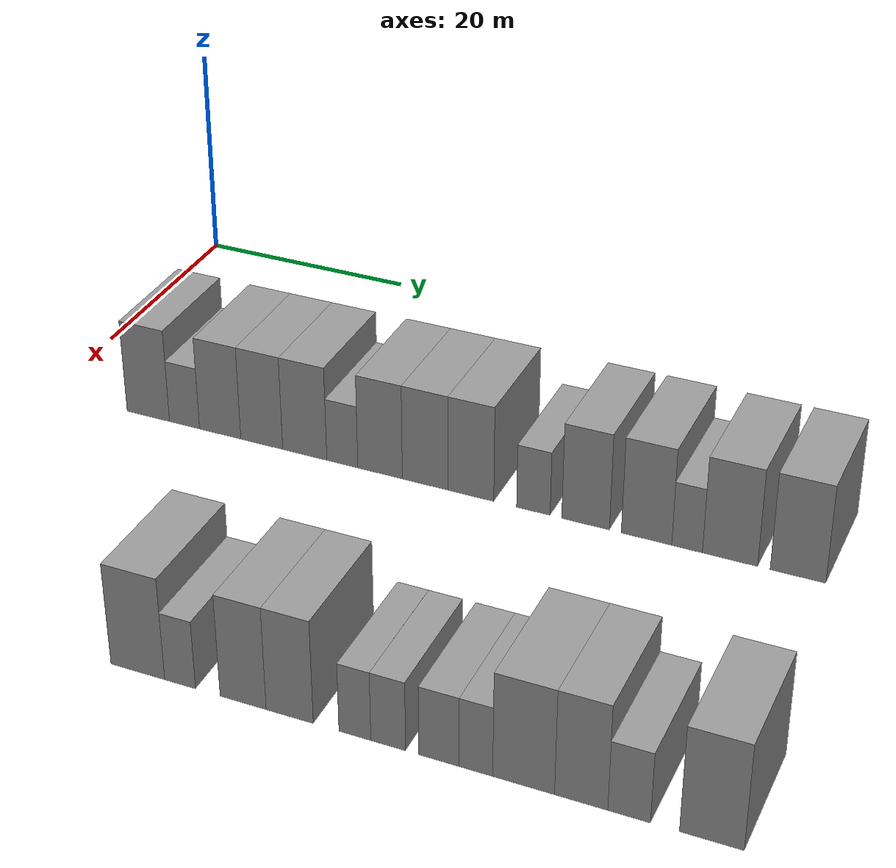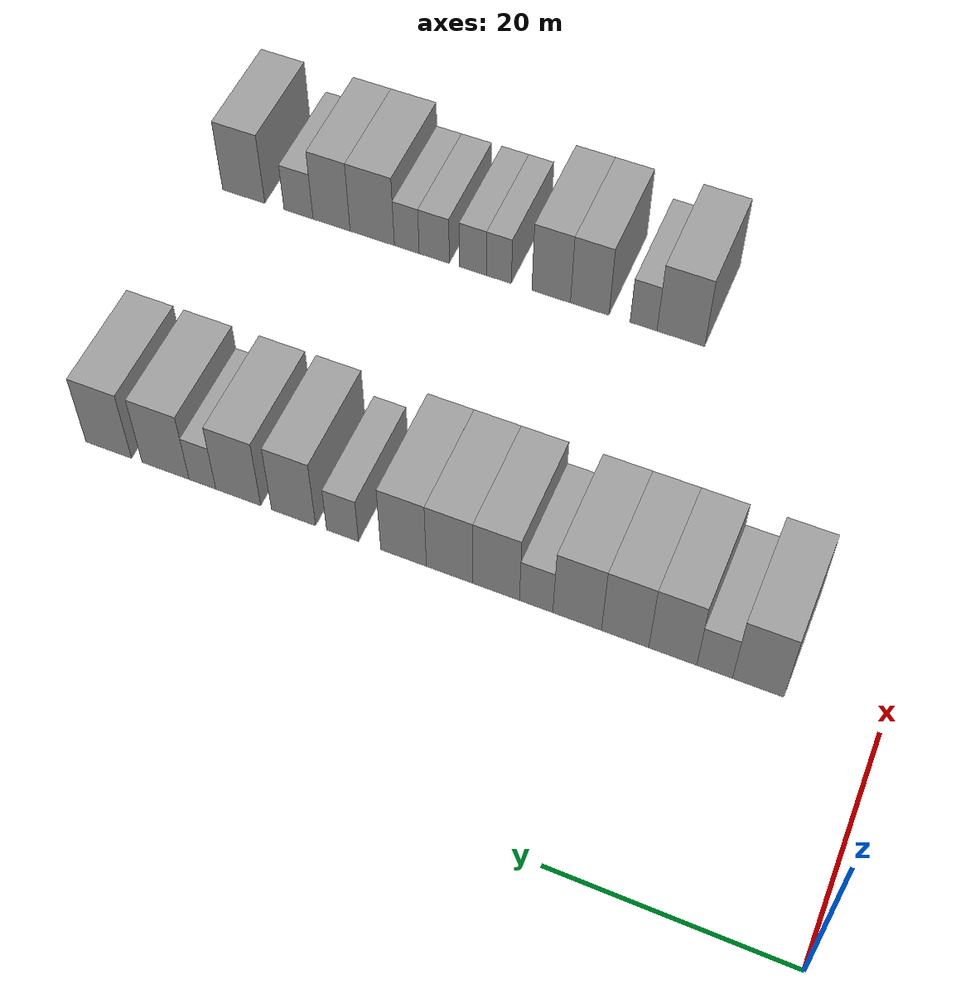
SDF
<sdf version="1.6">
 <world name="default">
  <model name="building_52">
   <static>1</static>
   <pose>25.0000 9.8063 0 0.000000 0.000000 0.000000</pose>
   <link name="link">
    <pose>0 0 4.50 0 0 0</pose>
    <collision name="collision"><geometry><box><size>10.0000 4.1936 9.0000</size></box></geometry></collision>
    <visual name="visual">
     <cast_shadows>0</cast_shadows>
     <geometry><box><size>10.0000 4.1936 9.0000</size></box></geometry>
     <material>
      <script>
       <uri>model://grey_wall/materials/scripts</uri>
       <uri>model://grey_wall/materials/textures</uri>
       <name>vrc/grey_wall</name>
      </script>
     </material>
    </visual>
   </link>
  </model>
  <model name="building_53">
   <static>1</static>
   <pose>25.0000 13.3732 0 0.000000 0.000000 0.000000</pose>
   <link name="link">
    <pose>0 0 3.00 0 0 0</pose>
    <collision name="collision"><geometry><box><size>10.0000 2.9401 6.0000</size></box></geometry></collision>
    <visual name="visual">
     <cast_shadows>0</cast_shadows>
     <geometry><box><size>10.0000 2.9401 6.0000</size></box></geometry>
     <material>
      <script>
       <uri>model://grey_wall/materials/scripts</uri>
       <uri>model://grey_wall/materials/textures</uri>
       <name>vrc/grey_wall</name>
      </script>
     </material>
    </visual>
   </link>
  </model>
  <model name="building_54">
   <static>1</static>
   <pose>25.0000 16.8367 0 0.000000 0.000000 0.000000</pose>
   <link name="link">
    <pose>0 0 4.50 0 0 0</pose>
    <collision name="collision"><geometry><box><size>10.0000 3.9869 9.0000</size></box></geometry></collision>
    <visual name="visual">
     <cast_shadows>0</cast_shadows>
     <geometry><box><size>10.0000 3.9869 9.0000</size></box></geometry>
     <material>
      <script>
       <uri>model://grey_wall/materials/scripts</uri>
       <uri>model://grey_wall/materials/textures</uri>
       <name>vrc/grey_wall</name>
      </script>
     </material>
    </visual>
   </link>
  </model>
  <model name="building_55">
   <static>1</static>
   <pose>25.0000 20.8237 0 0.000000 0.000000 0.000000</pose>
   <link name="link">
    <pose>0 0 4.50 0 0 0</pose>
    <collision name="collision"><geometry><box><size>10.0000 3.9871 9.0000</size></box></geometry></collision>
    <visual name="visual">
     <cast_shadows>0</cast_shadows>
     <geometry><box><size>10.0000 3.9871 9.0000</size></box></geometry>
     <material>
      <script>
       <uri>model://grey_wall/materials/scripts</uri>
       <uri>model://grey_wall/materials/textures</uri>
       <name>vrc/grey_wall</name>
      </script>
     </material>
    </visual>
   </link>
  </model>
  <model name="building_56">
   <static>1</static>
   <pose>25.0000 24.8852 0 0.000000 0.000000 0.000000</pose>
   <link name="link">
    <pose>0 0 4.50 0 0 0</pose>
    <collision name="collision"><geometry><box><size>10.0000 4.1360 9.0000</size></box></geometry></collision>
    <visual name="visual">
     <cast_shadows>0</cast_shadows>
     <geometry><box><size>10.0000 4.1360 9.0000</size></box></geometry>
     <material>
      <script>
       <uri>model://grey_wall/materials/scripts</uri>
       <uri>model://grey_wall/materials/textures</uri>
       <name>vrc/grey_wall</name>
      </script>
     </material>
    </visual>
   </link>
  </model>
  <model name="building_57">
   <static>1</static>
   <pose>25.0000 28.3893 0 0.000000 0.000000 0.000000</pose>
   <link name="link">
    <pose>0 0 3.00 0 0 0</pose>
    <collision name="collision"><geometry><box><size>10.0000 2.8722 6.0000</size></box></geometry></collision>
    <visual name="visual">
     <cast_shadows>0</cast_shadows>
     <geometry><box><size>10.0000 2.8722 6.0000</size></box></geometry>
     <material>
      <script>
       <uri>model://grey_wall/materials/scripts</uri>
       <uri>model://grey_wall/materials/textures</uri>
       <name>vrc/grey_wall</name>
      </script>
     </material>
    </visual>
   </link>
  </model>
  <model name="building_58">
   <static>1</static>
   <pose>25.0000 31.8541 0 0.000000 0.000000 0.000000</pose>
   <link name="link">
    <pose>0 0 4.50 0 0 0</pose>
    <collision name="collision"><geometry><box><size>10.0000 4.0575 9.0000</size></box></geometry></collision>
    <visual name="visual">
     <cast_shadows>0</cast_shadows>
     <geometry><box><size>10.0000 4.0575 9.0000</size></box></geometry>
     <material>
      <script>
       <uri>model://grey_wall/materials/scripts</uri>
       <uri>model://grey_wall/materials/textures</uri>
       <name>vrc/grey_wall</name>
      </script>
     </material>
    </visual>
   </link>
  </model>
  <model name="building_59">
   <static>1</static>
   <pose>25.0000 35.9184 0 0.000000 0.000000 0.000000</pose>
   <link name="link">
    <pose>0 0 4.50 0 0 0</pose>
    <collision name="collision"><geometry><box><size>10.0000 4.0711 9.0000</size></box></geometry></collision>
    <visual name="visual">
     <cast_shadows>0</cast_shadows>
     <geometry><box><size>10.0000 4.0711 9.0000</size></box></geometry>
     <material>
      <script>
       <uri>model://grey_wall/materials/scripts</uri>
       <uri>model://grey_wall/materials/textures</uri>
       <name>vrc/grey_wall</name>
      </script>
     </material>
    </visual>
   </link>
  </model>
  <model name="building_60">
   <static>1</static>
   <pose>25.0000 39.9813 0 0.000000 0.000000 0.000000</pose>
   <link name="link">
    <pose>0 0 4.50 0 0 0</pose>
    <collision name="collision"><geometry><box><size>10.0000 4.0546 9.0000</size></box></geometry></collision>
    <visual name="visual">
     <cast_shadows>0</cast_shadows>
     <geometry><box><size>10.0000 4.0546 9.0000</size></box></geometry>
     <material>
      <script>
       <uri>model://grey_wall/materials/scripts</uri>
       <uri>model://grey_wall/materials/textures</uri>
       <name>vrc/grey_wall</name>
      </script>
     </material>
    </visual>
   </link>
  </model>
  <model name="building_61">
   <static>1</static>
   <pose>25.0000 45.4525 0 0.000000 0.000000 0.000000</pose>
   <link name="link">
    <pose>0 0 3.00 0 0 0</pose>
    <collision name="collision"><geometry><box><size>10.0000 2.8880 6.0000</size></box></geometry></collision>
    <visual name="visual">
     <cast_shadows>0</cast_shadows>
     <geometry><box><size>10.0000 2.8880 6.0000</size></box></geometry>
     <material>
      <script>
       <uri>model://grey_wall/materials/scripts</uri>
       <uri>model://grey_wall/materials/textures</uri>
       <name>vrc/grey_wall</name>
      </script>
     </material>
    </visual>
   </link>
  </model>
  <model name="building_62">
   <static>1</static>
   <pose>25.0000 49.9165 0 0.000000 0.000000 0.000000</pose>
   <link name="link">
    <pose>0 0 4.50 0 0 0</pose>
    <collision name="collision"><geometry><box><size>10.0000 4.0400 9.0000</size></box></geometry></collision>
    <visual name="visual">
     <cast_shadows>0</cast_shadows>
     <geometry><box><size>10.0000 4.0400 9.0000</size></box></geometry>
     <material>
      <script>
       <uri>model://grey_wall/materials/scripts</uri>
       <uri>model://grey_wall/materials/textures</uri>
       <name>vrc/grey_wall</name>
      </script>
     </material>
    </visual>
   </link>
  </model>
  <model name="building_63">
   <static>1</static>
   <pose>25.0000 55.0288 0 0.000000 0.000000 0.000000</pose>
   <link name="link">
    <pose>0 0 4.50 0 0 0</pose>
    <collision name="collision"><geometry><box><size>10.0000 4.1845 9.0000</size></box></geometry></collision>
    <visual name="visual">
     <cast_shadows>0</cast_shadows>
     <geometry><box><size>10.0000 4.1845 9.0000</size></box></geometry>
     <material>
      <script>
       <uri>model://grey_wall/materials/scripts</uri>
       <uri>model://grey_wall/materials/textures</uri>
       <name>vrc/grey_wall</name>
      </script>
     </material>
    </visual>
   </link>
  </model>
  <model name="building_64">
   <static>1</static>
   <pose>25.0000 58.3787 0 0.000000 0.000000 0.000000</pose>
   <link name="link">
    <pose>0 0 3.00 0 0 0</pose>
    <collision name="collision"><geometry><box><size>10.0000 2.5154 6.0000</size></box></geometry></collision>
    <visual name="visual">
     <cast_shadows>0</cast_shadows>
     <geometry><box><size>10.0000 2.5154 6.0000</size></box></geometry>
     <material>
      <script>
       <uri>model://grey_wall/materials/scripts</uri>
       <uri>model://grey_wall/materials/textures</uri>
       <name>vrc/grey_wall</name>
      </script>
     </material>
    </visual>
   </link>
  </model>
  <model name="building_65">
   <static>1</static>
   <pose>25.0000 61.8660 0 0.000000 0.000000 0.000000</pose>
   <link name="link">
    <pose>0 0 4.50 0 0 0</pose>
    <collision name="collision"><geometry><box><size>10.0000 4.4591 9.0000</size></box></geometry></collision>
    <visual name="visual">
     <cast_shadows>0</cast_shadows>
     <geometry><box><size>10.0000 4.4591 9.0000</size></box></geometry>
     <material>
      <script>
       <uri>model://grey_wall/materials/scripts</uri>
       <uri>model://grey_wall/materials/textures</uri>
       <name>vrc/grey_wall</name>
      </script>
     </material>
    </visual>
   </link>
  </model>
  <model name="building_66">
   <static>1</static>
   <pose>25.0000 67.2920 0 0.000000 0.000000 0.000000</pose>
   <link name="link">
    <pose>0 0 4.50 0 0 0</pose>
    <collision name="collision"><geometry><box><size>10.0000 4.3930 9.0000</size></box></geometry></collision>
    <visual name="visual">
     <cast_shadows>0</cast_shadows>
     <geometry><box><size>10.0000 4.3930 9.0000</size></box></geometry>
     <material>
      <script>
       <uri>model://grey_wall/materials/scripts</uri>
       <uri>model://grey_wall/materials/textures</uri>
       <name>vrc/grey_wall</name>
      </script>
     </material>
    </visual>
   </link>
  </model>
  <model name="building_165">
   <static>1</static>
   <pose>55.0000 26.5648 0 0.000000 0.000000 0.000000</pose>
   <link name="link">
    <pose>0 0 4.50 0 0 0</pose>
    <collision name="collision"><geometry><box><size>10.0000 4.4670 9.0000</size></box></geometry></collision>
    <visual name="visual">
     <cast_shadows>0</cast_shadows>
     <geometry><box><size>10.0000 4.4670 9.0000</size></box></geometry>
     <material>
      <script>
       <uri>model://grey_wall/materials/scripts</uri>
       <uri>model://grey_wall/materials/textures</uri>
       <name>vrc/grey_wall</name>
      </script>
     </material>
    </visual>
   </link>
  </model>
  <model name="building_166">
   <static>1</static>
   <pose>55.0000 30.0605 0 0.000000 0.000000 0.000000</pose>
   <link name="link">
    <pose>0 0 3.00 0 0 0</pose>
    <collision name="collision"><geometry><box><size>10.0000 2.5244 6.0000</size></box></geometry></collision>
    <visual name="visual">
     <cast_shadows>0</cast_shadows>
     <geometry><box><size>10.0000 2.5244 6.0000</size></box></geometry>
     <material>
      <script>
       <uri>model://grey_wall/materials/scripts</uri>
       <uri>model://grey_wall/materials/textures</uri>
       <name>vrc/grey_wall</name>
      </script>
     </material>
    </visual>
   </link>
  </model>
  <model name="building_167">
   <static>1</static>
   <pose>55.0000 35.1649 0 0.000000 0.000000 0.000000</pose>
   <link name="link">
    <pose>0 0 4.50 0 0 0</pose>
    <collision name="collision"><geometry><box><size>10.0000 3.6843 9.0000</size></box></geometry></collision>
    <visual name="visual">
     <cast_shadows>0</cast_shadows>
     <geometry><box><size>10.0000 3.6843 9.0000</size></box></geometry>
     <material>
      <script>
       <uri>model://grey_wall/materials/scripts</uri>
       <uri>model://grey_wall/materials/textures</uri>
       <name>vrc/grey_wall</name>
      </script>
     </material>
    </visual>
   </link>
  </model>
  <model name="building_168">
   <static>1</static>
   <pose>55.0000 38.8623 0 0.000000 0.000000 0.000000</pose>
   <link name="link">
    <pose>0 0 4.50 0 0 0</pose>
    <collision name="collision"><geometry><box><size>10.0000 3.7105 9.0000</size></box></geometry></collision>
    <visual name="visual">
     <cast_shadows>0</cast_shadows>
     <geometry><box><size>10.0000 3.7105 9.0000</size></box></geometry>
     <material>
      <script>
       <uri>model://grey_wall/materials/scripts</uri>
       <uri>model://grey_wall/materials/textures</uri>
       <name>vrc/grey_wall</name>
      </script>
     </material>
    </visual>
   </link>
  </model>
  <model name="building_169">
   <static>1</static>
   <pose>55.0000 43.9409 0 0.000000 0.000000 0.000000</pose>
   <link name="link">
    <pose>0 0 3.00 0 0 0</pose>
    <collision name="collision"><geometry><box><size>10.0000 2.4468 6.0000</size></box></geometry></collision>
    <visual name="visual">
     <cast_shadows>0</cast_shadows>
     <geometry><box><size>10.0000 2.4468 6.0000</size></box></geometry>
     <material>
      <script>
       <uri>model://grey_wall/materials/scripts</uri>
       <uri>model://grey_wall/materials/textures</uri>
       <name>vrc/grey_wall</name>
      </script>
     </material>
    </visual>
   </link>
  </model>
  <model name="building_170">
   <static>1</static>
   <pose>55.0000 46.4843 0 0.000000 0.000000 0.000000</pose>
   <link name="link">
    <pose>0 0 3.00 0 0 0</pose>
    <collision name="collision"><geometry><box><size>10.0000 2.6398 6.0000</size></box></geometry></collision>
    <visual name="visual">
     <cast_shadows>0</cast_shadows>
     <geometry><box><size>10.0000 2.6398 6.0000</size></box></geometry>
     <material>
      <script>
       <uri>model://grey_wall/materials/scripts</uri>
       <uri>model://grey_wall/materials/textures</uri>
       <name>vrc/grey_wall</name>
      </script>
     </material>
    </visual>
   </link>
  </model>
  <model name="building_171">
   <static>1</static>
   <pose>55.0000 50.3026 0 0.000000 0.000000 0.000000</pose>
   <link name="link">
    <pose>0 0 3.00 0 0 0</pose>
    <collision name="collision"><geometry><box><size>10.0000 2.9969 6.0000</size></box></geometry></collision>
    <visual name="visual">
     <cast_shadows>0</cast_shadows>
     <geometry><box><size>10.0000 2.9969 6.0000</size></box></geometry>
     <material>
      <script>
       <uri>model://grey_wall/materials/scripts</uri>
       <uri>model://grey_wall/materials/textures</uri>
       <name>vrc/grey_wall</name>
      </script>
     </material>
    </visual>
   </link>
  </model>
  <model name="building_172">
   <static>1</static>
   <pose>55.0000 53.0404 0 0.000000 0.000000 0.000000</pose>
   <link name="link">
    <pose>0 0 3.00 0 0 0</pose>
    <collision name="collision"><geometry><box><size>10.0000 2.4786 6.0000</size></box></geometry></collision>
    <visual name="visual">
     <cast_shadows>0</cast_shadows>
     <geometry><box><size>10.0000 2.4786 6.0000</size></box></geometry>
     <material>
      <script>
       <uri>model://grey_wall/materials/scripts</uri>
       <uri>model://grey_wall/materials/textures</uri>
       <name>vrc/grey_wall</name>
      </script>
     </material>
    </visual>
   </link>
  </model>
  <model name="building_173">
   <static>1</static>
   <pose>55.0000 56.5176 0 0.000000 0.000000 0.000000</pose>
   <link name="link">
    <pose>0 0 4.50 0 0 0</pose>
    <collision name="collision"><geometry><box><size>10.0000 4.4757 9.0000</size></box></geometry></collision>
    <visual name="visual">
     <cast_shadows>0</cast_shadows>
     <geometry><box><size>10.0000 4.4757 9.0000</size></box></geometry>
     <material>
      <script>
       <uri>model://grey_wall/materials/scripts</uri>
       <uri>model://grey_wall/materials/textures</uri>
       <name>vrc/grey_wall</name>
      </script>
     </material>
    </visual>
   </link>
  </model>
  <model name="building_174">
   <static>1</static>
   <pose>55.0000 60.6454 0 0.000000 0.000000 0.000000</pose>
   <link name="link">
    <pose>0 0 4.50 0 0 0</pose>
    <collision name="collision"><geometry><box><size>10.0000 3.7800 9.0000</size></box></geometry></collision>
    <visual name="visual">
     <cast_shadows>0</cast_shadows>
     <geometry><box><size>10.0000 3.7800 9.0000</size></box></geometry>
     <material>
      <script>
       <uri>model://grey_wall/materials/scripts</uri>
       <uri>model://grey_wall/materials/textures</uri>
       <name>vrc/grey_wall</name>
      </script>
     </material>
    </visual>
   </link>
  </model>
  <model name="building_175">
   <static>1</static>
   <pose>55.0000 64.0267 0 0.000000 0.000000 0.000000</pose>
   <link name="link">
    <pose>0 0 3.00 0 0 0</pose>
    <collision name="collision"><geometry><box><size>10.0000 2.9824 6.0000</size></box></geometry></collision>
    <visual name="visual">
     <cast_shadows>0</cast_shadows>
     <geometry><box><size>10.0000 2.9824 6.0000</size></box></geometry>
     <material>
      <script>
       <uri>model://grey_wall/materials/scripts</uri>
       <uri>model://grey_wall/materials/textures</uri>
       <name>vrc/grey_wall</name>
      </script>
     </material>
    </visual>
   </link>
  </model>
  <model name="building_176">
   <static>1</static>
   <pose>55.0000 69.7172 0 0.000000 0.000000 0.000000</pose>
   <link name="link">
    <pose>0 0 4.50 0 0 0</pose>
    <collision name="collision"><geometry><box><size>10.0000 4.3987 9.0000</size></box></geometry></collision>
    <visual name="visual">
     <cast_shadows>0</cast_shadows>
     <geometry><box><size>10.0000 4.3987 9.0000</size></box></geometry>
     <material>
      <script>
       <uri>model://grey_wall/materials/scripts</uri>
       <uri>model://grey_wall/materials/textures</uri>
       <name>vrc/grey_wall</name>
      </script>
     </material>
    </visual>
   </link>
  </model>
 </world>
</sdf>
